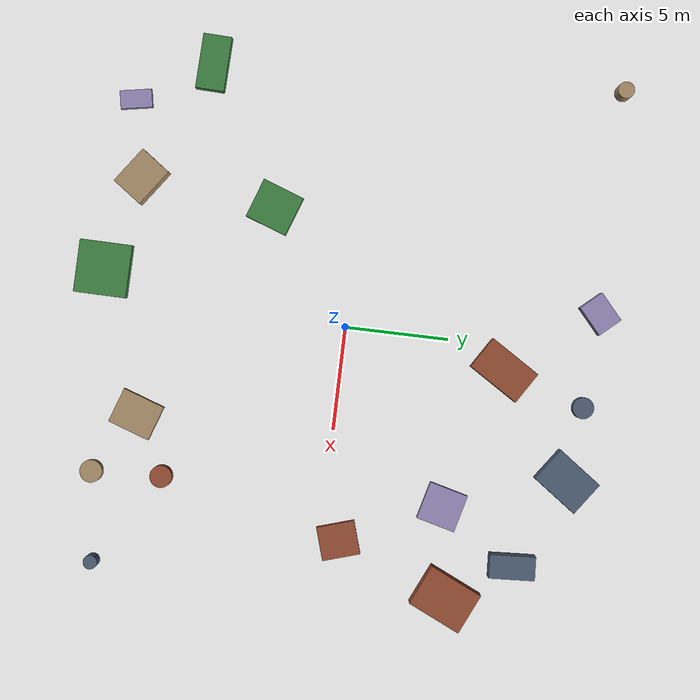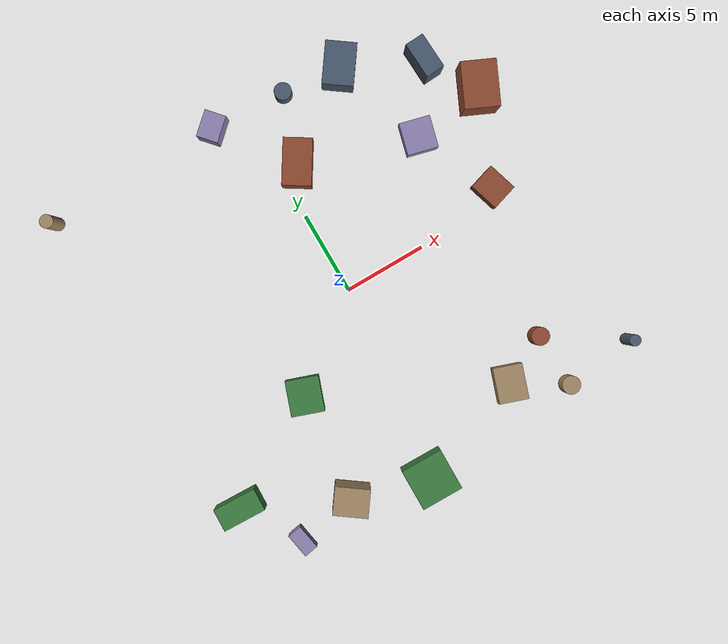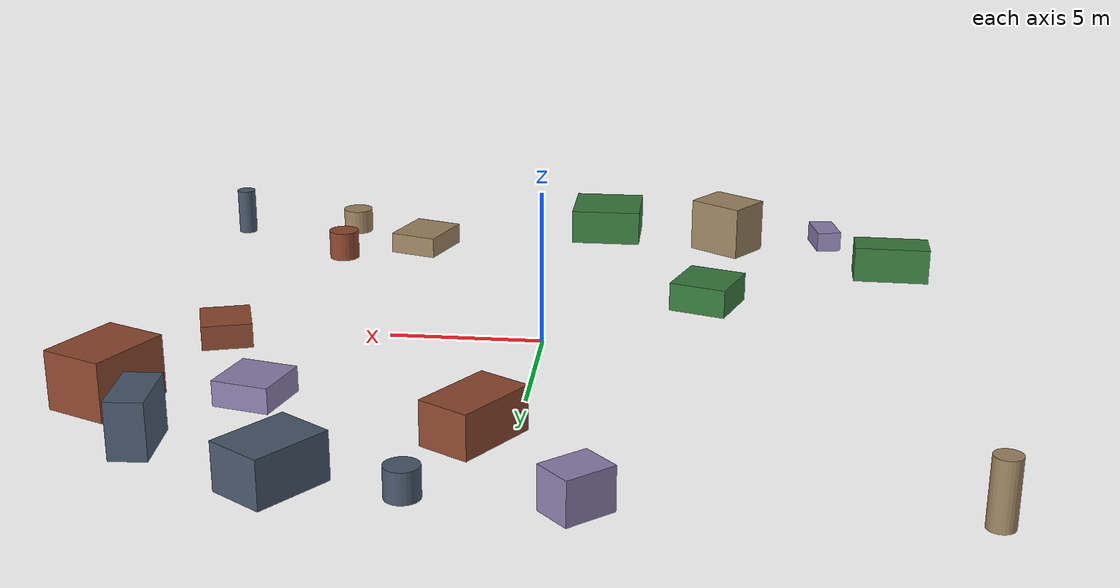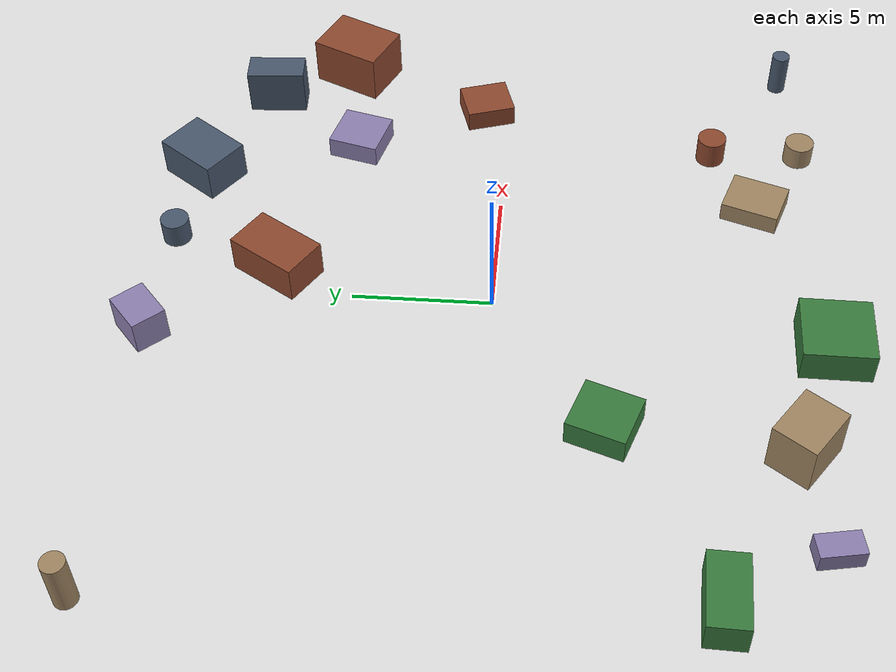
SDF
<sdf version="1.10">
 <world name="robotx_task1_uav_view">
  <gravity>0 0 -9.81</gravity>
  <physics name="physics" type="ode">
   <max_step_size>0.002</max_step_size>
   <real_time_factor>1.0</real_time_factor>
  </physics>
  <scene>
   <ambient>0.14 0.14 0.14 1.0</ambient>
   <background>0.32 0.32 0.38 1.0</background>
   <shadows>true</shadows>
   <grid>false</grid>
  </scene>
  <light name="sun" type="directional">
   <pose>0 0 300 0 0 0</pose>
   <diffuse>0.35 0.35 0.35 1.0</diffuse>
   <specular>0.12 0.12 0.12 1.0</specular>
   <direction>0.12 -0.05 -1.0</direction>
   <attenuation>
    <range>2500</range>
    <constant>0.85</constant>
    <linear>0.001</linear>
    <quadratic>0.00005</quadratic>
   </attenuation>
  </light>
  <plugin filename="gz-sim-physics-system" name="gz::sim::systems::Physics"/>
  <plugin filename="gz-sim-user-commands-system" name="gz::sim::systems::UserCommands"/>
  <plugin filename="gz-sim-scene-broadcaster-system" name="gz::sim::systems::SceneBroadcaster"/>
  <plugin filename="gz-sim-sensors-system" name="gz::sim::systems::Sensors">
   <render_engine>ogre2</render_engine>
  </plugin>
  <model name="scene_clutter_box_000">
   <static>true</static>
   <pose>5.373 -9.490 0.386 0 0 2.810989</pose>
   <link name="link">
    <visual name="v">
     <geometry><box><size>1.747 2.120 0.731</size></box></geometry>
     <material><ambient>0.45 0.38 0.32 1.0</ambient><diffuse>0.62 0.52 0.38 1.0</diffuse></material>
    </visual>
   </link>
  </model>
  <model name="scene_clutter_box_001">
   <static>true</static>
   <pose>6.088 11.458 0.755 0 0 -2.190350</pose>
   <link name="link">
    <visual name="v">
     <geometry><box><size>2.519 1.838 1.471</size></box></geometry>
     <material><ambient>0.18 0.22 0.28 1.0</ambient><diffuse>0.28 0.34 0.42 1.0</diffuse></material>
    </visual>
   </link>
  </model>
  <model name="scene_clutter_box_002">
   <static>true</static>
   <pose>1.152 7.834 0.723 0 0 -2.131082</pose>
   <link name="link">
    <visual name="v">
     <geometry><box><size>2.762 1.723 1.406</size></box></geometry>
     <material><ambient>0.35 0.16 0.12 1.0</ambient><diffuse>0.55 0.28 0.18 1.0</diffuse></material>
    </visual>
   </link>
  </model>
  <model name="scene_clutter_box_003">
   <static>true</static>
   <pose>-1.401 -11.880 0.639 0 0 -0.011735</pose>
   <link name="link">
    <visual name="v">
     <geometry><box><size>2.548 2.528 1.237</size></box></geometry>
     <material><ambient>0.12 0.30 0.14 1.0</ambient><diffuse>0.22 0.48 0.24 1.0</diffuse></material>
    </visual>
   </link>
  </model>
  <model name="scene_clutter_box_004">
   <static>true</static>
   <pose>-9.709 -11.309 0.371 0 0 -1.393427</pose>
   <link name="link">
    <visual name="v">
     <geometry><box><size>1.527 0.874 0.703</size></box></geometry>
     <material><ambient>0.40 0.35 0.50 1.0</ambient><diffuse>0.55 0.50 0.68 1.0</diffuse></material>
    </visual>
   </link>
  </model>
  <model name="scene_clutter_box_005">
   <static>true</static>
   <pose>-5.984 -10.522 0.955 0 0 0.948161</pose>
   <link name="link">
    <visual name="v">
     <geometry><box><size>1.655 2.049 1.870</size></box></geometry>
     <material><ambient>0.45 0.38 0.32 1.0</ambient><diffuse>0.62 0.52 0.38 1.0</diffuse></material>
    </visual>
   </link>
  </model>
  <model name="scene_clutter_cyl_006">
   <static>true</static>
   <pose>2.503 11.835 0.521 0 0 1.448173</pose>
   <link name="link">
    <visual name="v">
     <geometry><cylinder><radius>0.516</radius><length>0.941</length></cylinder></geometry>
     <material><ambient>0.18 0.22 0.28 1.0</ambient><diffuse>0.28 0.34 0.42 1.0</diffuse></material>
    </visual>
   </link>
  </model>
  <model name="scene_clutter_box_007">
   <static>true</static>
   <pose>10.251 0.902 0.424 0 0 1.871771</pose>
   <link name="link">
    <visual name="v">
     <geometry><box><size>1.849 1.638 0.808</size></box></geometry>
     <material><ambient>0.35 0.16 0.12 1.0</ambient><diffuse>0.55 0.28 0.18 1.0</diffuse></material>
    </visual>
   </link>
  </model>
  <model name="scene_clutter_box_008">
   <static>true</static>
   <pose>-11.858 -7.779 0.637 0 0 3.106766</pose>
   <link name="link">
    <visual name="v">
     <geometry><box><size>2.628 1.380 1.233</size></box></geometry>
     <material><ambient>0.12 0.30 0.14 1.0</ambient><diffuse>0.22 0.48 0.24 1.0</diffuse></material>
    </visual>
   </link>
  </model>
  <model name="scene_clutter_box_009">
   <static>true</static>
   <pose>8.038 5.678 0.427 0 0 -0.251485</pose>
   <link name="link">
    <visual name="v">
     <geometry><box><size>1.845 1.918 0.814</size></box></geometry>
     <material><ambient>0.40 0.35 0.50 1.0</ambient><diffuse>0.55 0.50 0.68 1.0</diffuse></material>
    </visual>
   </link>
  </model>
  <model name="scene_clutter_cyl_010">
   <static>true</static>
   <pose>-12.823 11.972 1.060 0 0 -2.526310</pose>
   <link name="link">
    <visual name="v">
     <geometry><cylinder><radius>0.398</radius><length>2.020</length></cylinder></geometry>
     <material><ambient>0.45 0.38 0.32 1.0</ambient><diffuse>0.62 0.52 0.38 1.0</diffuse></material>
    </visual>
   </link>
  </model>
  <model name="scene_clutter_box_011">
   <static>true</static>
   <pose>10.461 9.312 0.904 0 0 0.057409</pose>
   <link name="link">
    <visual name="v">
     <geometry><box><size>1.140 2.201 1.767</size></box></geometry>
     <material><ambient>0.18 0.22 0.28 1.0</ambient><diffuse>0.28 0.34 0.42 1.0</diffuse></material>
    </visual>
   </link>
  </model>
  <model name="scene_clutter_cyl_012">
   <static>true</static>
   <pose>8.194 -7.933 0.565 0 0 1.857424</pose>
   <link name="link">
    <visual name="v">
     <geometry><cylinder><radius>0.537</radius><length>1.030</length></cylinder></geometry>
     <material><ambient>0.35 0.16 0.12 1.0</ambient><diffuse>0.55 0.28 0.18 1.0</diffuse></material>
    </visual>
   </link>
  </model>
  <model name="scene_clutter_box_013">
   <static>true</static>
   <pose>-5.316 -4.050 0.506 0 0 1.229440</pose>
   <link name="link">
    <visual name="v">
     <geometry><box><size>2.114 1.978 0.973</size></box></geometry>
     <material><ambient>0.12 0.30 0.14 1.0</ambient><diffuse>0.22 0.48 0.24 1.0</diffuse></material>
    </visual>
   </link>
  </model>
  <model name="scene_clutter_box_014">
   <static>true</static>
   <pose>-2.081 12.097 0.683 0 0 -0.846339</pose>
   <link name="link">
    <visual name="v">
     <geometry><box><size>1.276 1.612 1.326</size></box></geometry>
     <material><ambient>0.40 0.35 0.50 1.0</ambient><diffuse>0.55 0.50 0.68 1.0</diffuse></material>
    </visual>
   </link>
  </model>
  <model name="scene_clutter_cyl_015">
   <static>true</static>
   <pose>8.343 -11.308 0.484 0 0 1.542627</pose>
   <link name="link">
    <visual name="v">
     <geometry><cylinder><radius>0.544</radius><length>0.868</length></cylinder></geometry>
     <material><ambient>0.45 0.38 0.32 1.0</ambient><diffuse>0.62 0.52 0.38 1.0</diffuse></material>
    </visual>
   </link>
  </model>
  <model name="scene_clutter_cyl_016">
   <static>true</static>
   <pose>12.627 -10.763 0.872 0 0 1.210881</pose>
   <link name="link">
    <visual name="v">
     <geometry><cylinder><radius>0.335</radius><length>1.645</length></cylinder></geometry>
     <material><ambient>0.18 0.22 0.28 1.0</ambient><diffuse>0.28 0.34 0.42 1.0</diffuse></material>
    </visual>
   </link>
  </model>
  <model name="scene_clutter_box_017">
   <static>true</static>
   <pose>12.358 6.304 0.952 0 0 -2.000789</pose>
   <link name="link">
    <visual name="v">
     <geometry><box><size>2.738 2.078 1.864</size></box></geometry>
     <material><ambient>0.35 0.16 0.12 1.0</ambient><diffuse>0.55 0.28 0.18 1.0</diffuse></material>
    </visual>
   </link>
  </model>
  <model name="uav_dataset_camera">
   <static>false</static>
   <pose>0 0 26 0 0 0</pose>
   <plugin filename="librobotx_overhead_motion_plugin.dylib" name="robotx::OverheadMotionPlugin">
    <radius_x_m>13.48191</radius_x_m>
    <radius_y_m>10.63899</radius_y_m>
    <angular_speed_rad_s>0.036719</angular_speed_rad_s>
    <phase_rad>3.758757</phase_rad>
    <z_wobble_m>0.07518</z_wobble_m>
    <z_wobble_hz>0.06438</z_wobble_hz>
    <z_wobble_phase_rad>5.443741</z_wobble_phase_rad>
   </plugin>
   <link name="camera_link">
    <gravity>false</gravity>
    <sensor name="top_down_rgb" type="camera">
     <always_on>true</always_on>
     <update_rate>20</update_rate>
     <pose>0 0 0 0 1.57079632679 0</pose>
     <camera>
      <horizontal_fov>1.05</horizontal_fov>
      <image><width>1920</width><height>1080</height><format>R8G8B8</format></image>
      <clip><near>0.2</near><far>600</far></clip>
     </camera>
     <topic>/robotx/uav/camera/image_raw</topic>
     <visualize>true</visualize>
    </sensor>
   </link>
  </model>
 </world>
</sdf>
